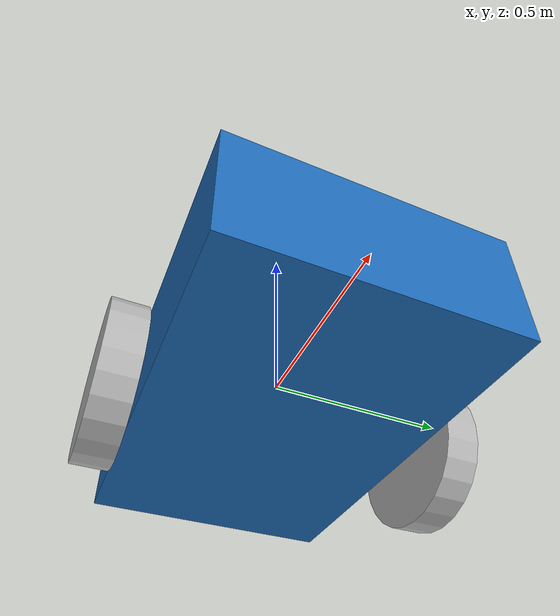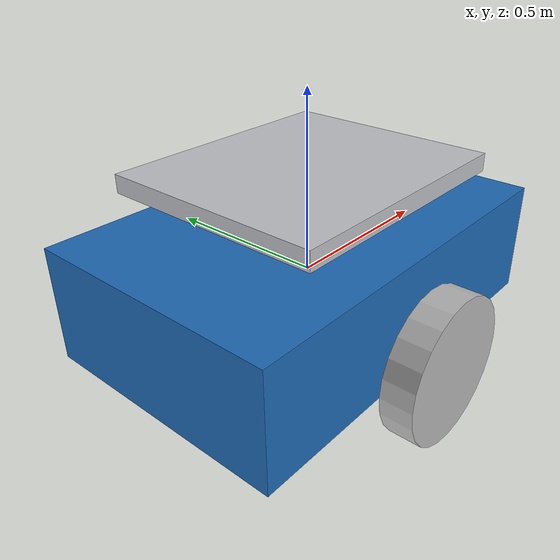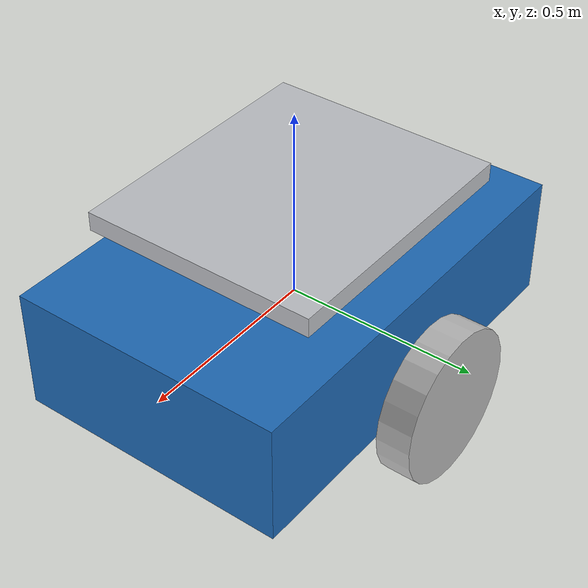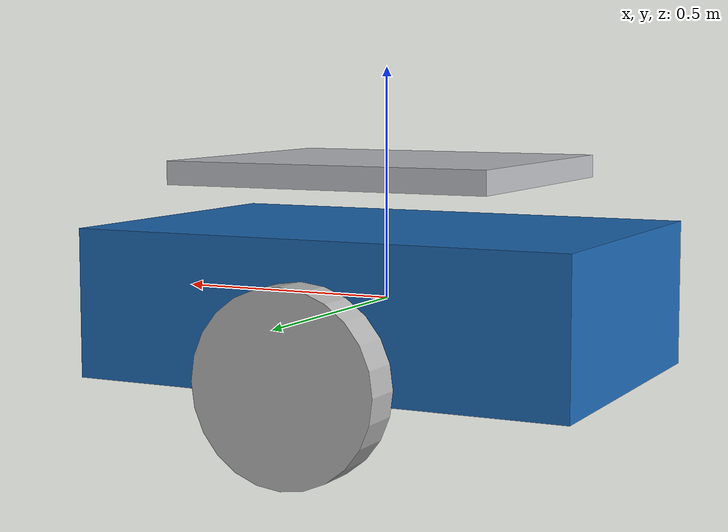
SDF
<?xml version="1.0"?>
<sdf version="1.10">
  <model name="ump_mobile_base">
    <link name="base_link">
      <inertial><mass>28</mass><inertia><ixx>1.1</ixx><iyy>1.8</iyy><izz>2.1</izz></inertia></inertial>
      <collision name="body_collision"><geometry><box><size>1.1 0.72 0.32</size></box></geometry></collision>
      <visual name="body_visual"><geometry><box><size>1.1 0.72 0.32</size></box></geometry><material><diffuse>0.12 0.42 0.72 1</diffuse></material></visual>
      <collision name="tray_collision"><pose>0 0 0.28 0 0 0</pose><geometry><box><size>0.72 0.62 0.05</size></box></geometry></collision>
      <visual name="tray_visual"><pose>0 0 0.28 0 0 0</pose><geometry><box><size>0.72 0.62 0.05</size></box></geometry><material><diffuse>0.75 0.76 0.78 1</diffuse></material></visual>
      <collision name="front_caster"><pose>0.42 0 -0.27 0 0 0</pose><geometry><sphere><radius>0.08</radius></sphere></geometry><surface><friction><ode><mu>0.05</mu><mu2>0.05</mu2></ode></friction></surface></collision>
      <collision name="rear_caster"><pose>-0.42 0 -0.27 0 0 0</pose><geometry><sphere><radius>0.08</radius></sphere></geometry><surface><friction><ode><mu>0.05</mu><mu2>0.05</mu2></ode></friction></surface></collision>
    </link>
    <link name="left_wheel">
      <pose relative_to="base_link">0 0.43 -0.12 1.5708 0 0</pose>
      <inertial><mass>2</mass><inertia><ixx>0.03</ixx><iyy>0.03</iyy><izz>0.03</izz></inertia></inertial>
      <collision name="collision"><geometry><cylinder><radius>0.2</radius><length>0.09</length></cylinder></geometry></collision>
      <visual name="visual"><geometry><cylinder><radius>0.2</radius><length>0.09</length></cylinder></geometry></visual>
    </link>
    <link name="right_wheel">
      <pose relative_to="base_link">0 -0.43 -0.12 1.5708 0 0</pose>
      <inertial><mass>2</mass><inertia><ixx>0.03</ixx><iyy>0.03</iyy><izz>0.03</izz></inertia></inertial>
      <collision name="collision"><geometry><cylinder><radius>0.2</radius><length>0.09</length></cylinder></geometry></collision>
      <visual name="visual"><geometry><cylinder><radius>0.2</radius><length>0.09</length></cylinder></geometry></visual>
    </link>
    <joint name="left_wheel_joint" type="revolute"><parent>base_link</parent><child>left_wheel</child><axis><xyz>0 1 0</xyz></axis></joint>
    <joint name="right_wheel_joint" type="revolute"><parent>base_link</parent><child>right_wheel</child><axis><xyz>0 1 0</xyz></axis></joint>
    <plugin filename="gz-sim-diff-drive-system" name="gz::sim::systems::DiffDrive">
      <left_joint>left_wheel_joint</left_joint><right_joint>right_wheel_joint</right_joint>
      <wheel_separation>0.86</wheel_separation><wheel_radius>0.2</wheel_radius>
      <topic>/model/mobile_base/cmd_vel</topic><odom_topic>/model/mobile_base/odometry</odom_topic>
    </plugin>
  </model>
</sdf>
